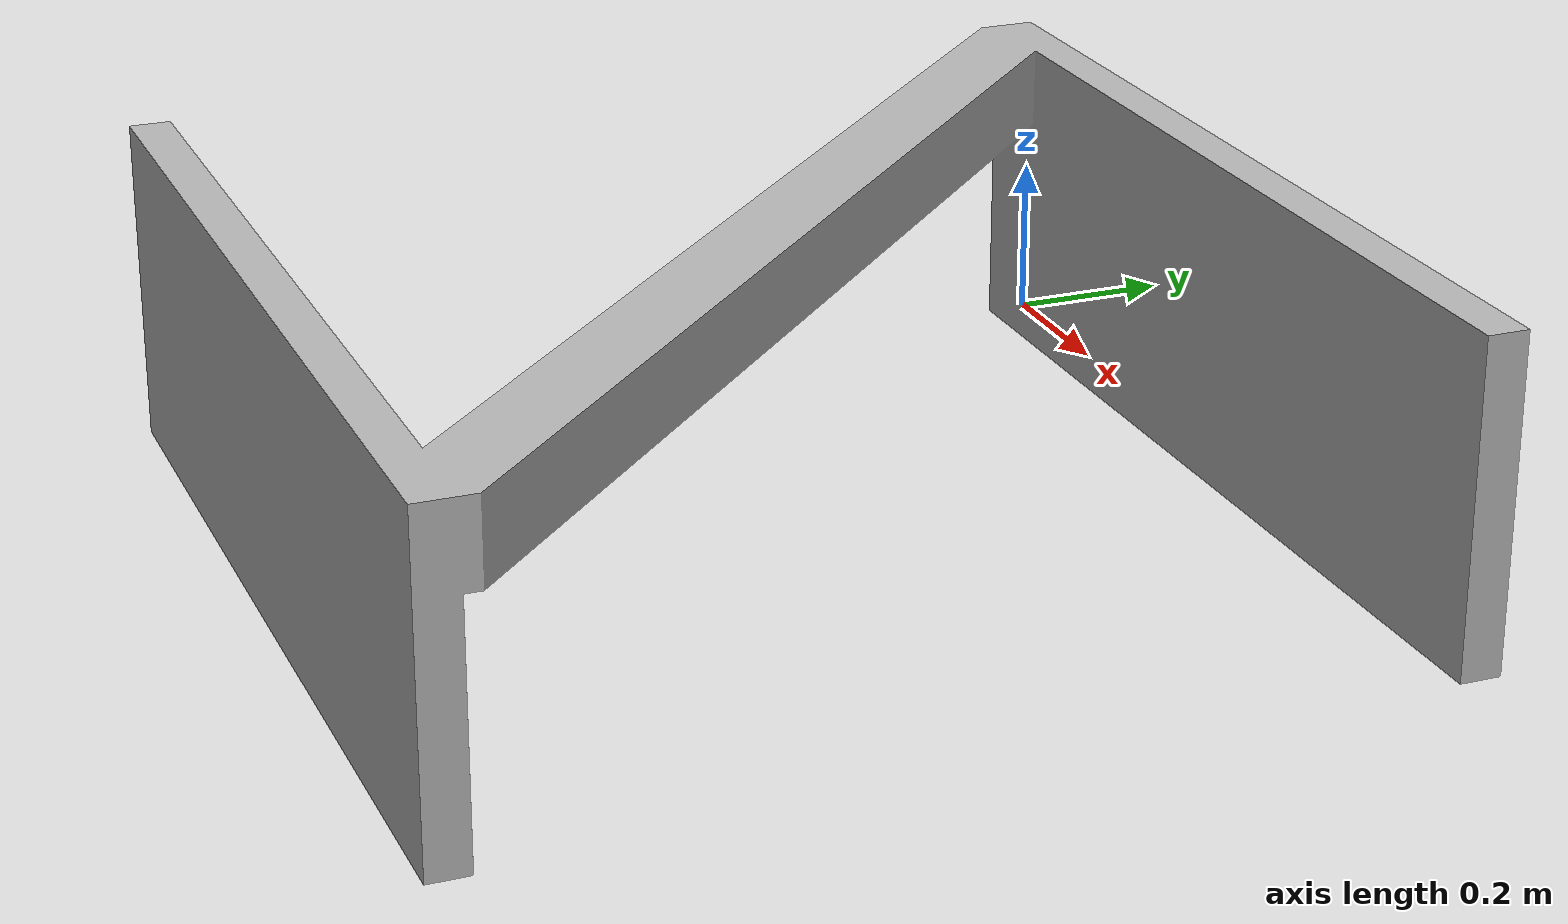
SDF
<?xml version='1.0'?>
<sdf version='1.6'>
  <model name='terrain-rail_lift'>
    <static>true</static>
    <link name='base_link'>
      <pose frame=''>0 0 0 0 -0 0</pose>
      <inertial>
        <pose frame=''>0.6 -0.6 0.23832 0 -0 0</pose>
        <mass>36.104</mass>
        <inertia>
          <ixx>1.419</ixx>
          <ixy>1.0397</ixy>
          <ixz>1.4086e-15</ixz>
          <iyy>4.639</iyy>
          <iyz>-2.2675e-16</iyz>
          <izz>5.3258</izz>
        </inertia>
      </inertial>
      <collision name='base_link_collision'>
        <pose frame=''>0 0 0 0 -0 0</pose>
        <geometry>
          <mesh>
            <scale>1 1 1</scale>
            <uri>model://terrain-rail_lift/meshes/base_link.STL</uri>
          </mesh>
        </geometry>
        <surface>
          <contact>
            <collide_bitmask>65535</collide_bitmask>
            <ode/>
          </contact>
          <friction>
            <ode>
              <mu>2</mu>
              <mu2>2</mu2>
            </ode>
            <torsional>
              <ode/>
            </torsional>
          </friction>
          <bounce/>
        </surface>
      </collision>
      <visual name='base_link_visual'>
        <pose frame=''>0 0 0 0 -0 0</pose>
        <geometry>
          <mesh>
            <scale>1 1 1</scale>
            <uri>model://terrain-rail_lift/meshes/base_link.dae</uri>
          </mesh>
        </geometry>
      </visual>
    </link>
  </model>
</sdf>
